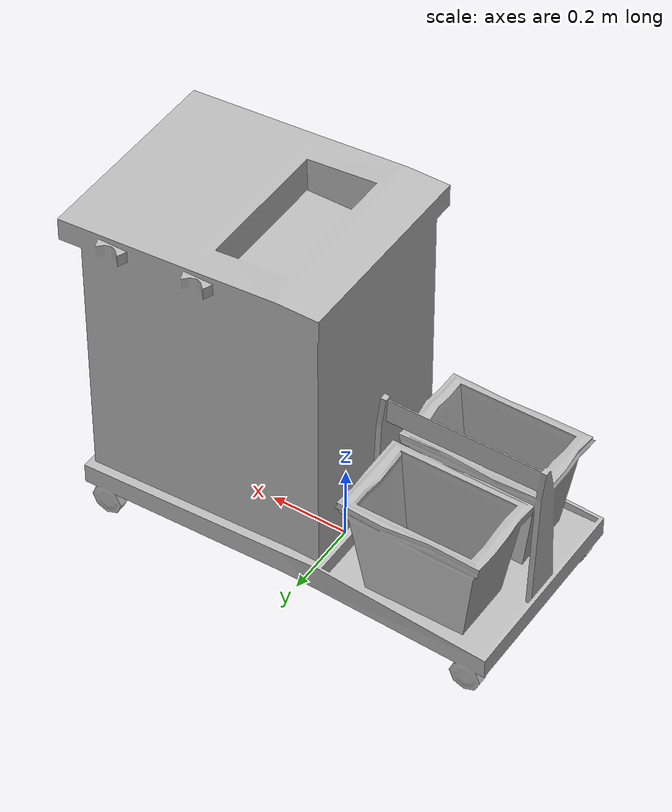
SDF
<sdf version="1.5">
    <model name="mopcart4">
        <link name="link">
            <pose>0 0 0 0 0 0</pose>
            <visual name="visual">
                <geometry>
                    <mesh>
                        <uri>https://fuel.ignitionrobotics.org/1.0/openrobotics/models/mopcart4/1/files/meshes/MopCart4.obj</uri>
                    </mesh>
                </geometry>
            </visual>
            <collision name="collision">
                <geometry>
                    <mesh>
                        <uri>https://fuel.ignitionrobotics.org/1.0/openrobotics/models/mopcart4/1/files/meshes/MopCart4.obj</uri>
                    </mesh>
                </geometry>
            </collision>
        </link>
    </model>
</sdf>
